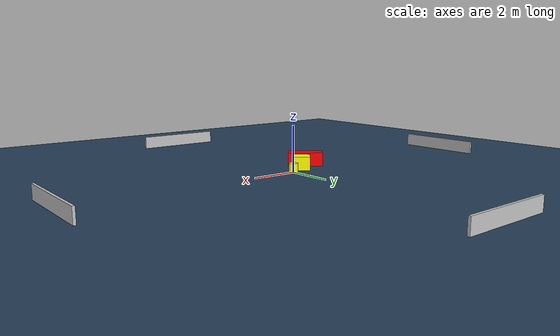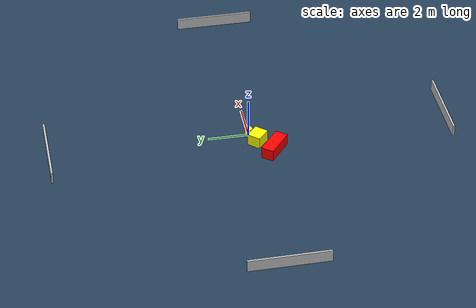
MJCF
<?xml version="1.0" ?>
<mujoco model="generated_environment">
  <option timestep="0.01" integrator="RK4" cone="elliptic"/>
  <default>
    <geom density="1"/>
  </default>
  <asset>
    <texture builtin="gradient" height="3072" name="skybox" rgb1="0.3 0.5 0.7" rgb2="0 0 0" type="skybox" width="512"/>
    <texture builtin="checker" height="300" name="groundplane" rgb1="0.2 0.3 0.4" rgb2="0.1 0.2 0.3" type="2d" width="300"/>
    <material name="groundplane" reflectance="0.2" texrepeat="5 5" texture="groundplane"/>
  </asset>
  <worldbody>
    <light dir="0 0 -1" directional="true" pos="0 0 1.5"/>
    <geom condim="3" friction="0.5 0.005 0.001" material="groundplane" name="floor" pos="0 0 0" size="0 0 0.05" type="plane"/>
    <body name="walls">
      <geom name="wall_1" condim="4" pos="-10.0 0.0 0.3" rgba="0.800000011920929 0.800000011920929 0.800000011920929 1.0" size="0.05 2.0 0.3" type="box"/>
      <geom name="wall_2" condim="4" pos="10.0 0.0 0.3" rgba="0.800000011920929 0.800000011920929 0.800000011920929 1.0" size="0.05 2.0 0.3" type="box"/>
      <geom name="wall_3" condim="4" pos="0.0 -10.0 0.3" rgba="0.800000011920929 0.800000011920929 0.800000011920929 1.0" size="2.0 0.05 0.3" type="box"/>
      <geom name="wall_4" condim="4" pos="0.0 10.0 0.3" rgba="0.800000011920929 0.800000011920929 0.800000011920929 1.0" size="2.0 0.05 0.3" type="box"/>
    </body>
    <body name="robot">
      <joint name="joint_x" type="slide" pos="0 0 0" axis="1 0 0"/>
      <joint name="joint_y" type="slide" pos="0 0 0" axis="0 1 0"/>
      <geom name="robot" type="cylinder" pos="0.0 0.0 0.2" size="0.2 0.2 0.0" mass="5.0" friction="1.0 0.005 0.0001" condim="4" rgba="1.0 1.0 0.0 1.0"/>
    </body>
    <body name="obstacle_1_movable">
      <geom name="obstacle_1_movable" condim="4" pos="-0.691655210388934 -0.3245716569463201 0.3" euler="0 0 138.33068304039463" friction="0.0 0.005 0.001" rgba="1.0 1.0 0.0 1.0" size="0.4019587820000533 0.3458285878750563 0.3" type="box" mass="0.1"/>
      <joint type="free"/>
    </body>
    <body name="obstacle_2_static">
      <geom name="obstacle_2_static" condim="4" pos="-1.5188554649580441 -1.002618994481818 0.3" euler="0 0 141.19682773926988" friction="0.0 0.005 0.001" rgba="1.0 0.0 0.0 1.0" size="0.7695104080043409 0.3202647381551532 0.3" type="box"/>
    </body>
  </worldbody>
  <actuator>
    <motor name="actuator_x" joint="joint_x" gear="1" ctrlrange="-1 1"/>
    <motor name="actuator_y" joint="joint_y" gear="1" ctrlrange="-1 1"/>
  </actuator>
</mujoco>
